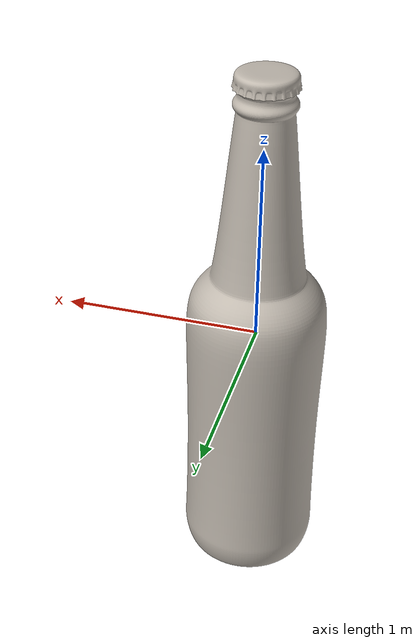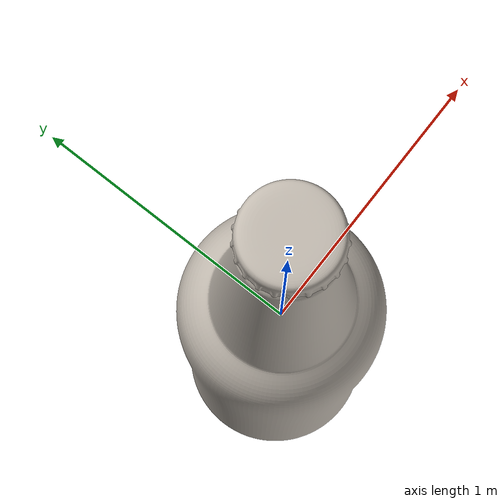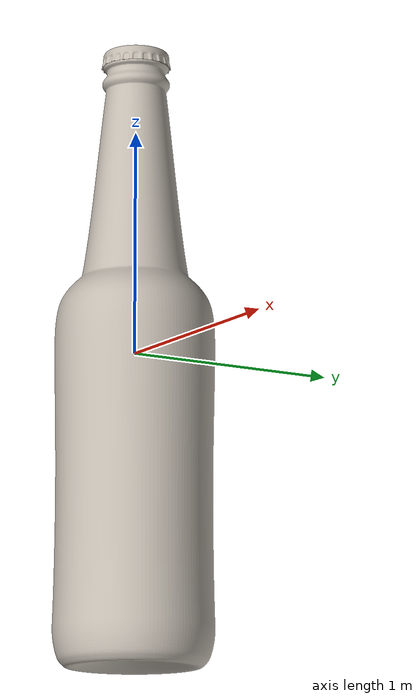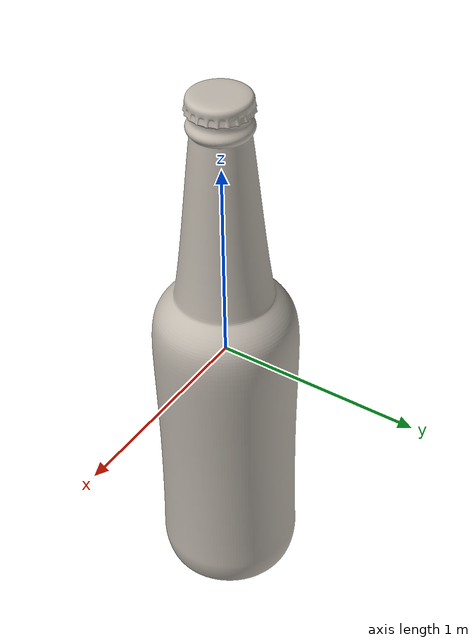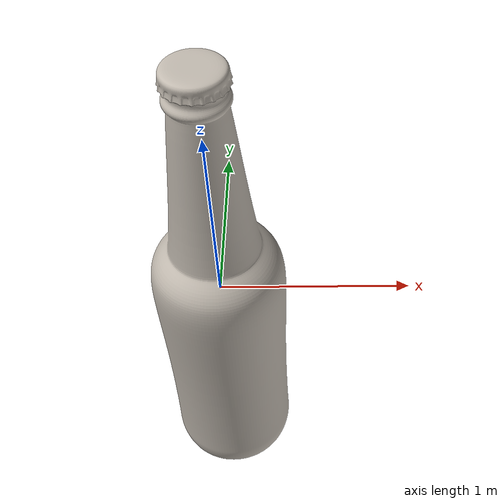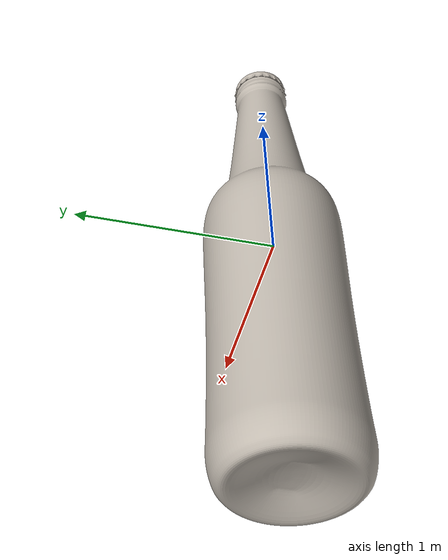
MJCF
<mujoco model="beer_bottle">
    <compiler angle="radian" meshdir="../meshes/obj/" texturedir="../meshes/textures/" autolimits="true" />
    <asset>
        <texture name="beer_bottle_body_visual" type="2d" file="T_BeerBottleBody.png" />
        <material name="beer_bottle_body_visual" texture="beer_bottle_body_visual" />
        <mesh name="beer_bottle_body_visual" file="BeerBottleBody.obj" />
        <texture name="beer_bottle_cap_visual" type="2d" file="T_BeerBottleCap.png" />
        <material name="beer_bottle_cap_visual" texture="beer_bottle_cap_visual" />
        <mesh name="beer_bottle_cap_visual" file="BeerBottleCap.obj" />
    </asset>
    <worldbody>
        <body name="beer_bottle">
            <freejoint />
            <geom name="beer_bottle_body_visual" pos="0.0 0.0 0.0" quat="1.0 0.0 0.0 0.0"
                type="mesh" material="beer_bottle_body_visual" mesh="beer_bottle_body_visual"
                contype="0" conaffinity="0" />
            <geom name="beer_bottle_cap_visual" pos="0.0 0.0 0.0" quat="1.0 0.0 0.0 0.0"
                type="mesh" material="beer_bottle_cap_visual" mesh="beer_bottle_cap_visual"
                contype="0" conaffinity="0" />
        </body>
    </worldbody>
</mujoco>
